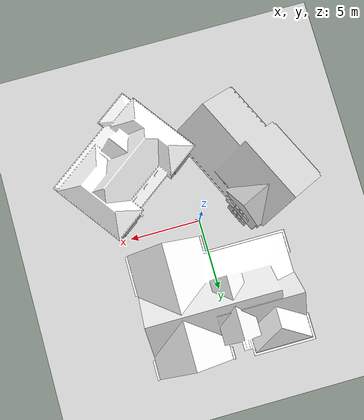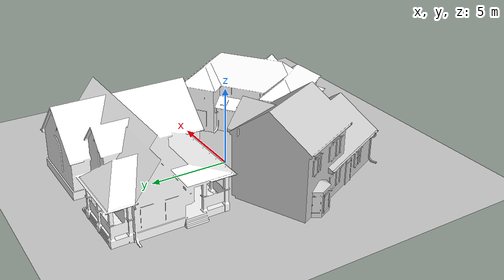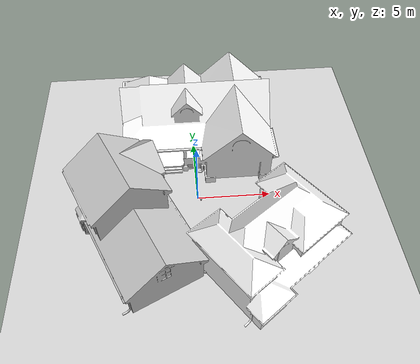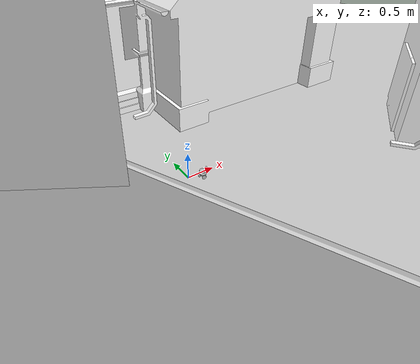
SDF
<sdf version="1.6">
 <world name="default">
  <light name="sun" type="directional">
   <pose>0 0 10 0 -0 0</pose>
   <diffuse>0.8 0.8 0.8 1</diffuse>
   <specular>0.1 0.1 0.1 1</specular>
   <attenuation>
    <range>1000</range>
    <constant>0.9</constant>
    <linear>0.01</linear>
    <quadratic>0.001</quadratic>
   </attenuation>
   <direction>-0.5 0.5 -1</direction>
  </light>
  <model name="ground_plane">
   <static>1</static>
   <link name="link">
    <collision name="collision">
     <geometry><plane><normal>0 0 1</normal><size>100 100</size></plane></geometry>
     <surface><friction><ode><mu>100</mu><mu2>50</mu2></ode></friction></surface>
    </collision>
    <visual name="visual">
     <cast_shadows>0</cast_shadows>
     <geometry><plane><normal>0 0 1</normal><size>100 100</size></plane></geometry>
     <material>
      <script><uri>file://media/materials/scripts/gazebo.material</uri><name>Gazebo/Grey</name></script>
     </material>
    </visual>
   </link>
  </model>
  <gravity>0 0 -9.8</gravity>
  <magnetic_field>6e-06 2.3e-05 -4.2e-05</magnetic_field>
  <atmosphere type="adiabatic"/>
  <physics name="default_physics" default="0" type="ode">
   <max_step_size>0.001</max_step_size>
   <real_time_factor>1</real_time_factor>
   <real_time_update_rate>1000</real_time_update_rate>
  </physics>
  <scene><ambient>0.4 0.4 0.4 1</ambient><background>0.7 0.7 0.7 1</background><shadows>1</shadows></scene>
  <spherical_coordinates>
   <surface_model>EARTH_WGS84</surface_model>
   <latitude_deg>0</latitude_deg>
   <longitude_deg>0</longitude_deg>
   <elevation>0</elevation>
   <heading_deg>0</heading_deg>
  </spherical_coordinates>
  <model name="House 1">
   <static>1</static>
   <link name="link">
    <collision name="collision">
     <geometry><mesh><uri>model://house_1/meshes/house_1.dae</uri><scale>1 1 1</scale></mesh></geometry>
    </collision>
    <visual name="visual">
     <geometry><mesh><uri>model://house_1/meshes/house_1.dae</uri><scale>1 1 1</scale></mesh></geometry>
     <material>
      <script>
       <uri>model://house_1/materials/scripts</uri>
       <uri>model://house_1/materials/textures</uri>
       <name>House_1/Diffuse</name>
      </script>
      <shader type="normal_map_object_space"><normal_map>House_1_Normal.png</normal_map></shader>
     </material>
    </visual>
   </link>
   <pose>0.411162 5.81315 0 0 -0 0</pose>
  </model>
  <model name="House 2">
   <static>1</static>
   <link name="link">
    <collision name="collision">
     <geometry><mesh><uri>model://house_2/meshes/house_2.dae</uri><scale>1 1 1</scale></mesh></geometry>
    </collision>
    <visual name="visual">
     <geometry><mesh><uri>model://house_2/meshes/house_2.dae</uri><scale>1 1 1</scale></mesh></geometry>
     <material>
      <script>
       <uri>model://house_2/materials/scripts</uri>
       <uri>model://house_2/materials/textures</uri>
       <name>House_2/Diffuse</name>
      </script>
     </material>
    </visual>
   </link>
   <pose>4.52811 -4.03398 0 0 0 -2.50766</pose>
  </model>
  <model name="House 3">
   <static>1</static>
   <link name="link">
    <collision name="collision">
     <geometry><mesh><uri>model://house_3/meshes/house_3.dae</uri><scale>1 1 1</scale></mesh></geometry>
    </collision>
    <visual name="visual">
     <geometry><mesh><uri>model://house_3/meshes/house_3.dae</uri><scale>1 1 1</scale></mesh></geometry>
     <material>
      <script>
       <uri>model://house_3/materials/scripts</uri>
       <uri>model://house_3/materials/textures</uri>
       <name>House_3/Diffuse</name>
      </script>
     </material>
    </visual>
   </link>
   <pose>-3.808 -3.41117 0 0 0 -1.1297</pose>
  </model>
  <model name="romina">
   <link name="robot">
    <inertial>
     <pose>-0.034118 0 0.041863 0 -0 0</pose>
     <mass>5.1</mass>
     <inertia>
      <ixx>0.0502911</ixx>
      <ixy>0</ixy>
      <ixz>-0.00599412</ixz>
      <iyy>0.239435</iyy>
      <iyz>0</iyz>
      <izz>0.205224</izz>
     </inertia>
    </inertial>
    <collision name="robot_fixed_joint_lump__base_collision">
     <pose>0 0 0.05 0 -0 0</pose>
     <geometry><cylinder><length>0.02</length><radius>0.06</radius></cylinder></geometry>
    </collision>
    <collision name="robot_fixed_joint_lump__caster_collision_collision_1">
     <pose>-0.06 0 0.0125 0 -0 0</pose>
     <geometry><sphere><radius>0.02</radius></sphere></geometry>
    </collision>
    <collision name="robot_fixed_joint_lump__top_collision_2">
     <pose>0 0 0.11 0 -0 0</pose>
     <geometry><cylinder><length>0.02</length><radius>0.06</radius></cylinder></geometry>
    </collision>
    <collision name="robot_fixed_joint_lump__sim_cam_collision_3">
     <pose>0.06 0 0.16 0 -0 0</pose>
     <geometry><sphere><radius>0.025</radius></sphere></geometry>
    </collision>
    <visual name="robot_fixed_joint_lump__base_visual">
     <pose>0 0 0.05 0 -0 0</pose>
     <geometry><cylinder><length>0.02</length><radius>0.06</radius></cylinder></geometry>
    </visual>
    <visual name="robot_fixed_joint_lump__caster_visual_visual_1">
     <pose>-0.06 0 0.0125 0 -0 0</pose>
     <geometry><sphere><radius>0.02</radius></sphere></geometry>
    </visual>
    <visual name="robot_fixed_joint_lump__top_visual_2">
     <pose>0 0 0.11 0 -0 0</pose>
     <geometry><cylinder><length>0.02</length><radius>0.06</radius></cylinder></geometry>
    </visual>
    <visual name="robot_fixed_joint_lump__sim_cam_visual_3">
     <pose>0.06 0 0.16 0 -0 0</pose>
     <geometry><sphere><radius>0.025</radius></sphere></geometry>
     <material><script><uri>__default__</uri><name>__default__</name></script></material>
    </visual>
    <sensor name="camera1" type="camera">
     <update_rate>30</update_rate>
     <camera name="head">
      <horizontal_fov>1.57</horizontal_fov>
      <image><width>480</width><height>480</height><format>R8G8B8</format></image>
      <clip><near>0.02</near><far>300</far></clip>
      <noise><type>gaussian</type><mean>0</mean><stddev>0.007</stddev></noise>
     </camera>
     <plugin name="camera_controller" filename="libgazebo_ros_camera.so">
      <alwaysOn>true</alwaysOn>
      <updateRate>0.0</updateRate>
      <cameraName>/usb_cam</cameraName>
      <imageTopicName>image_raw</imageTopicName>
      <cameraInfoTopicName>camera_info</cameraInfoTopicName>
      <frameName>usb_cam</frameName>
      <hackBaseline>0.07</hackBaseline>
      <distortionK1>0.0</distortionK1>
      <distortionK2>0.0</distortionK2>
      <distortionK3>0.0</distortionK3>
      <distortionT1>0.0</distortionT1>
      <distortionT2>0.0</distortionT2>
      <robotNamespace>/</robotNamespace>
     </plugin>
     <pose>0.06 0 0.16 0 -0 0</pose>
    </sensor>
   </link>
   <link name="front_left_wheel">
    <pose>0 -0.08 0.03 0 -0 1.57</pose>
    <inertial>
     <mass>1.5</mass>
     <inertia><ixx>0.001</ixx><ixy>0</ixy><ixz>0</ixz><iyy>0.001</iyy><iyz>0</iyz><izz>0.001</izz></inertia>
    </inertial>
    <collision name="front_left_wheel_collision">
     <pose>0 0 0 3.14159 1.57079 3.14159</pose>
     <geometry><cylinder><length>0.02</length><radius>0.0375</radius></cylinder></geometry>
    </collision>
    <visual name="front_left_wheel_visual">
     <pose>0 0 0 3.14159 1.57079 3.14159</pose>
     <geometry><cylinder><length>0.01</length><radius>0.0375</radius></cylinder></geometry>
    </visual>
   </link>
   <joint name="front_base_to_left_wheel" type="revolute">
    <child>front_left_wheel</child>
    <parent>robot</parent>
    <axis>
     <xyz>0.000796 1 0</xyz>
     <limit><lower>-1e+16</lower><upper>1e+16</upper></limit>
     <dynamics><spring_reference>0</spring_reference><spring_stiffness>0</spring_stiffness></dynamics>
     <use_parent_model_frame>1</use_parent_model_frame>
    </axis>
   </joint>
   <link name="front_right_wheel">
    <pose>0 0.08 0.03 0 -0 1.57</pose>
    <inertial>
     <mass>1.5</mass>
     <inertia><ixx>0.001</ixx><ixy>0</ixy><ixz>0</ixz><iyy>0.001</iyy><iyz>0</iyz><izz>0.001</izz></inertia>
    </inertial>
    <collision name="front_right_wheel_collision">
     <pose>0 0 0 3.14159 1.57079 3.14159</pose>
     <geometry><cylinder><length>0.02</length><radius>0.0375</radius></cylinder></geometry>
    </collision>
    <visual name="front_right_wheel_visual">
     <pose>0 0 0 3.14159 1.57079 3.14159</pose>
     <geometry><cylinder><length>0.01</length><radius>0.0375</radius></cylinder></geometry>
    </visual>
   </link>
   <joint name="front_base_to_right_wheel" type="revolute">
    <child>front_right_wheel</child>
    <parent>robot</parent>
    <axis>
     <xyz>0.000796 1 0</xyz>
     <limit><lower>-1e+16</lower><upper>1e+16</upper></limit>
     <dynamics><spring_reference>0</spring_reference><spring_stiffness>0</spring_stiffness></dynamics>
     <use_parent_model_frame>1</use_parent_model_frame>
    </axis>
   </joint>
   <static>0</static>
   <plugin name="differential_drive_controller" filename="libgazebo_ros_diff_drive.so">
    <alwaysOn>true</alwaysOn>
    <updateRate>30</updateRate>
    <legacyMode>false</legacyMode>
    <leftJoint>front_base_to_left_wheel</leftJoint>
    <rightJoint>front_base_to_right_wheel</rightJoint>
    <wheelSeparation>0.12</wheelSeparation>
    <wheelDiameter>0.07</wheelDiameter>
    <torque>10</torque>
    <commandTopic>cmd_vel</commandTopic>
    <odometryTopic>odom</odometryTopic>
    <odometryFrame>odom</odometryFrame>
    <robotBaseFrame>base</robotBaseFrame>
    <publishWheelTF>true</publishWheelTF>
    <publishWheelJointState>true</publishWheelJointState>
    <robotNamespace>/</robotNamespace>
   </plugin>
   <pose>0.232466 -0.098164 0.007497 -4.9e-05 3e-06 -0.288665</pose>
  </model>
 </world>
</sdf>
